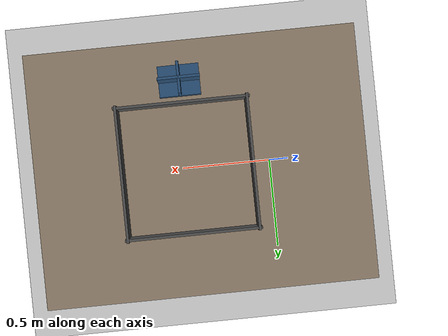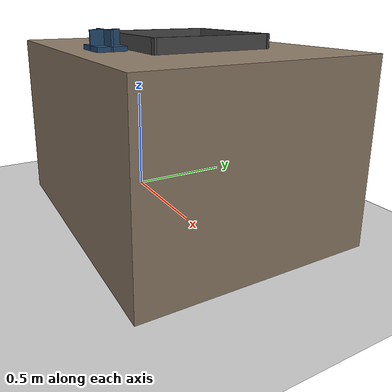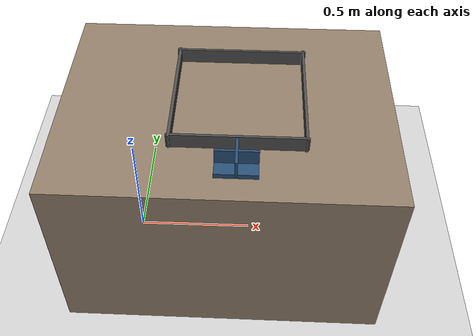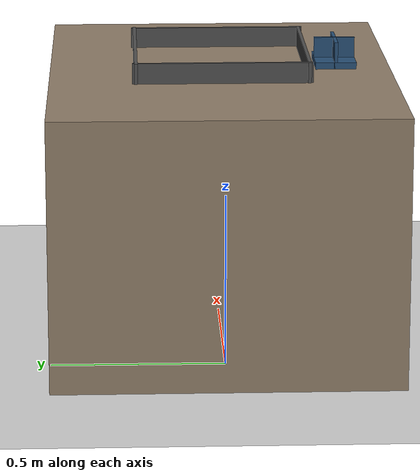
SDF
<?xml version="1.0" ?>
<sdf version="1.6">
  <world name="ag_tabletop_fast">

    <include>
      <uri>model://sun</uri>
    </include>
    <include>
      <uri>model://ground_plane</uri>
    </include>

    <physics name="physics_fast" default="1" type="ode">
      <max_step_size>0.001</max_step_size>
      <real_time_factor>1</real_time_factor>
      <real_time_update_rate>0</real_time_update_rate>
    </physics>

    <gravity>0 0 -9.81</gravity>

    <light name="workspace_light" type="point">
      <pose>0.45 0.0 1.35 0 0 0</pose>
      <diffuse>0.9 0.9 0.9 1</diffuse>
      <specular>0.1 0.1 0.1 1</specular>
      <attenuation>
        <range>8</range>
        <constant>0.5</constant>
        <linear>0.1</linear>
        <quadratic>0.01</quadratic>
      </attenuation>
      <cast_shadows>false</cast_shadows>
    </light>

    <!-- Table. Top surface at z = 0.78. The robot base sits at (0, 0, 0.78). -->
    <model name="table">
      <static>true</static>
      <pose>0.4 0 0.39 0 0 0</pose>
      <link name="table_link">
        <visual name="visual">
          <geometry>
            <box>
              <size>1.3 1.0 0.78</size>
            </box>
          </geometry>
          <material>
            <ambient>0.35 0.3 0.25 1</ambient>
            <diffuse>0.55 0.48 0.4 1</diffuse>
          </material>
        </visual>
        <collision name="collision">
          <geometry>
            <box>
              <size>1.3 1.0 0.78</size>
            </box>
          </geometry>
          <surface>
            <friction>
              <ode>
                <mu>0.6</mu>
                <mu2>0.6</mu2>
              </ode>
            </friction>
          </surface>
        </collision>
      </link>
    </model>

    <!-- Drop bin, right of the workspace. Interior ~0.14 x 0.10 x 0.15 m. -->
    <model name="bin">
      <static>true</static>
      <pose>0.45 -0.34 0.78 0 0 0</pose>
      <link name="bin_floor">
        <pose>0 0 0.01 0 0 0</pose>
        <visual name="visual">
          <geometry>
            <box>
              <size>0.16 0.12 0.02</size>
            </box>
          </geometry>
          <material>
            <ambient>0.1 0.2 0.3 1</ambient>
            <diffuse>0.15 0.3 0.45 1</diffuse>
          </material>
        </visual>
        <collision name="collision">
          <geometry>
            <box>
              <size>0.16 0.12 0.02</size>
            </box>
          </geometry>
        </collision>
      </link>
      <link name="bin_wall_far">
        <visual name="visual">
          <geometry>
            <box>
              <size>0.16 0.01 0.16</size>
            </box>
          </geometry>
          <material>
            <ambient>0.1 0.2 0.3 1</ambient>
            <diffuse>0.15 0.3 0.45 1</diffuse>
          </material>
        </visual>
        <collision name="collision">
          <geometry>
            <box>
              <size>0.16 0.01 0.16</size>
            </box>
          </geometry>
        </collision>
      </link>
      <link name="bin_wall_near">
        <visual name="visual">
          <geometry>
            <box>
              <size>0.16 0.01 0.16</size>
            </box>
          </geometry>
          <material>
            <ambient>0.1 0.2 0.3 1</ambient>
            <diffuse>0.15 0.3 0.45 1</diffuse>
          </material>
        </visual>
        <collision name="collision">
          <geometry>
            <box>
              <size>0.16 0.01 0.16</size>
            </box>
          </geometry>
        </collision>
      </link>
      <link name="bin_wall_left">
        <visual name="visual">
          <geometry>
            <box>
              <size>0.01 0.12 0.16</size>
            </box>
          </geometry>
          <material>
            <ambient>0.1 0.2 0.3 1</ambient>
            <diffuse>0.15 0.3 0.45 1</diffuse>
          </material>
        </visual>
        <collision name="collision">
          <geometry>
            <box>
              <size>0.01 0.12 0.16</size>
            </box>
          </geometry>
        </collision>
      </link>
      <link name="bin_wall_right">
        <visual name="visual">
          <geometry>
            <box>
              <size>0.01 0.12 0.16</size>
            </box>
          </geometry>
          <material>
            <ambient>0.1 0.2 0.3 1</ambient>
            <diffuse>0.15 0.3 0.45 1</diffuse>
          </material>
        </visual>
        <collision name="collision">
          <geometry>
            <box>
              <size>0.01 0.12 0.16</size>
            </box>
          </geometry>
        </collision>
      </link>
      <joint name="floor_to_wall_far" type="fixed">
        <parent>bin_floor</parent>
        <child>bin_wall_far</child>
        <pose>0 -0.065 0.09 0 0 0</pose>
      </joint>
      <joint name="floor_to_wall_near" type="fixed">
        <parent>bin_floor</parent>
        <child>bin_wall_near</child>
        <pose>0 0.065 0.09 0 0 0</pose>
      </joint>
      <joint name="floor_to_wall_left" type="fixed">
        <parent>bin_floor</parent>
        <child>bin_wall_left</child>
        <pose>-0.085 0 0.09 0 0 0</pose>
      </joint>
      <joint name="floor_to_wall_right" type="fixed">
        <parent>bin_floor</parent>
        <child>bin_wall_right</child>
        <pose>0.085 0 0.09 0 0 0</pose>
      </joint>
    </model>

    <!-- Low boundary walls keep objects inside the 0.5 x 0.5 m workspace. -->
    <model name="boundary_x_low">
      <static>true</static>
      <pose>0.20 0 0.81 0 0 0</pose>
      <link name="link">
        <visual name="visual">
          <geometry>
            <box>
              <size>0.01 0.52 0.06</size>
            </box>
          </geometry>
          <material>
            <ambient>0.2 0.2 0.2 1</ambient>
            <diffuse>0.3 0.3 0.3 1</diffuse>
          </material>
        </visual>
        <collision name="collision">
          <geometry>
            <box>
              <size>0.01 0.52 0.06</size>
            </box>
          </geometry>
        </collision>
      </link>
    </model>

    <model name="boundary_x_high">
      <static>true</static>
      <pose>0.70 0 0.81 0 0 0</pose>
      <link name="link">
        <visual name="visual">
          <geometry>
            <box>
              <size>0.01 0.52 0.06</size>
            </box>
          </geometry>
          <material>
            <ambient>0.2 0.2 0.2 1</ambient>
            <diffuse>0.3 0.3 0.3 1</diffuse>
          </material>
        </visual>
        <collision name="collision">
          <geometry>
            <box>
              <size>0.01 0.52 0.06</size>
            </box>
          </geometry>
        </collision>
      </link>
    </model>

    <model name="boundary_y_low">
      <static>true</static>
      <pose>0.45 -0.25 0.81 0 0 0</pose>
      <link name="link">
        <visual name="visual">
          <geometry>
            <box>
              <size>0.52 0.01 0.06</size>
            </box>
          </geometry>
          <material>
            <ambient>0.2 0.2 0.2 1</ambient>
            <diffuse>0.3 0.3 0.3 1</diffuse>
          </material>
        </visual>
        <collision name="collision">
          <geometry>
            <box>
              <size>0.52 0.01 0.06</size>
            </box>
          </geometry>
        </collision>
      </link>
    </model>

    <model name="boundary_y_high">
      <static>true</static>
      <pose>0.45 0.25 0.81 0 0 0</pose>
      <link name="link">
        <visual name="visual">
          <geometry>
            <box>
              <size>0.52 0.01 0.06</size>
            </box>
          </geometry>
          <material>
            <ambient>0.2 0.2 0.2 1</ambient>
            <diffuse>0.3 0.3 0.3 1</diffuse>
          </material>
        </visual>
        <collision name="collision">
          <geometry>
            <box>
              <size>0.52 0.01 0.06</size>
            </box>
          </geometry>
        </collision>
      </link>
    </model>

  </world>
</sdf>
